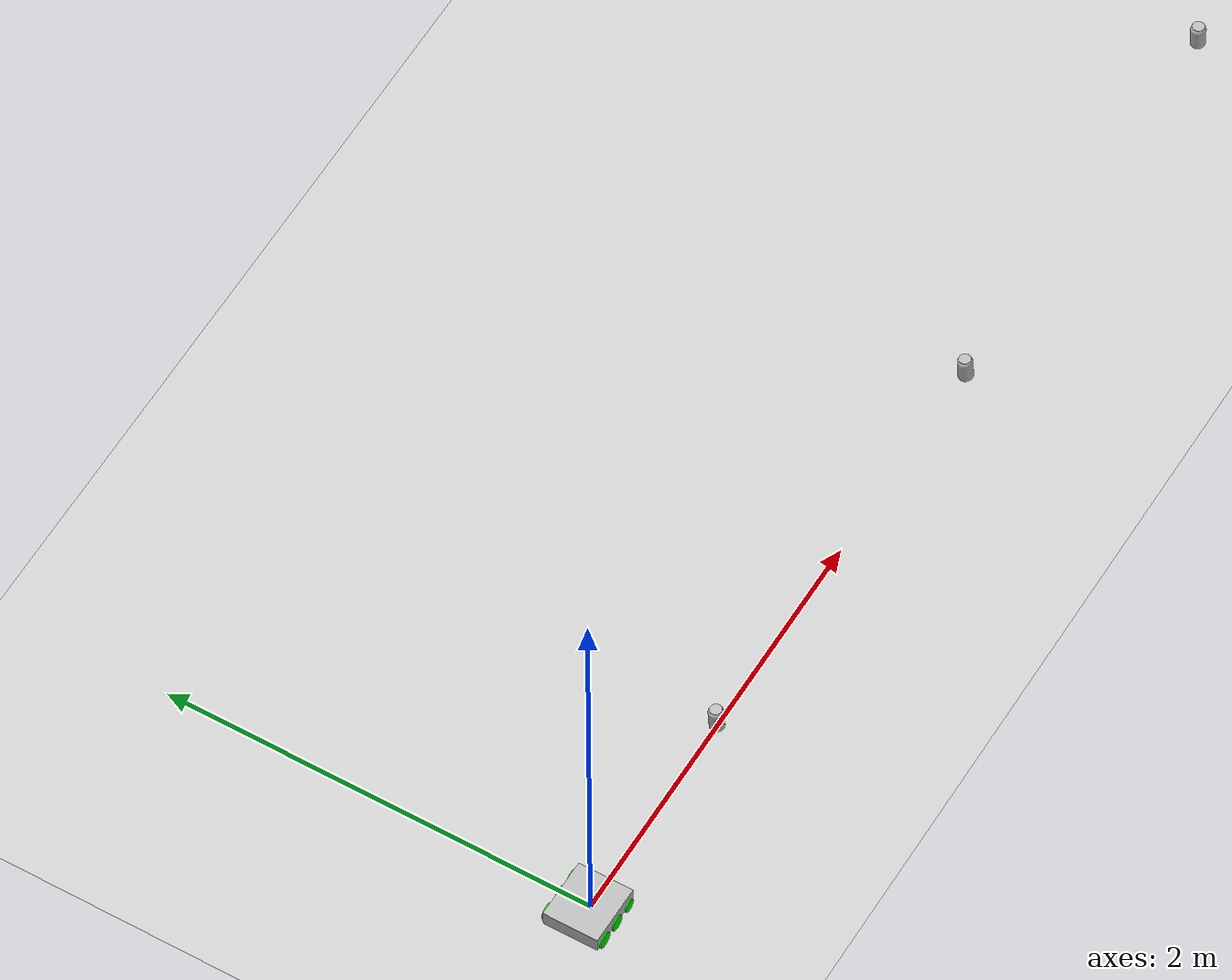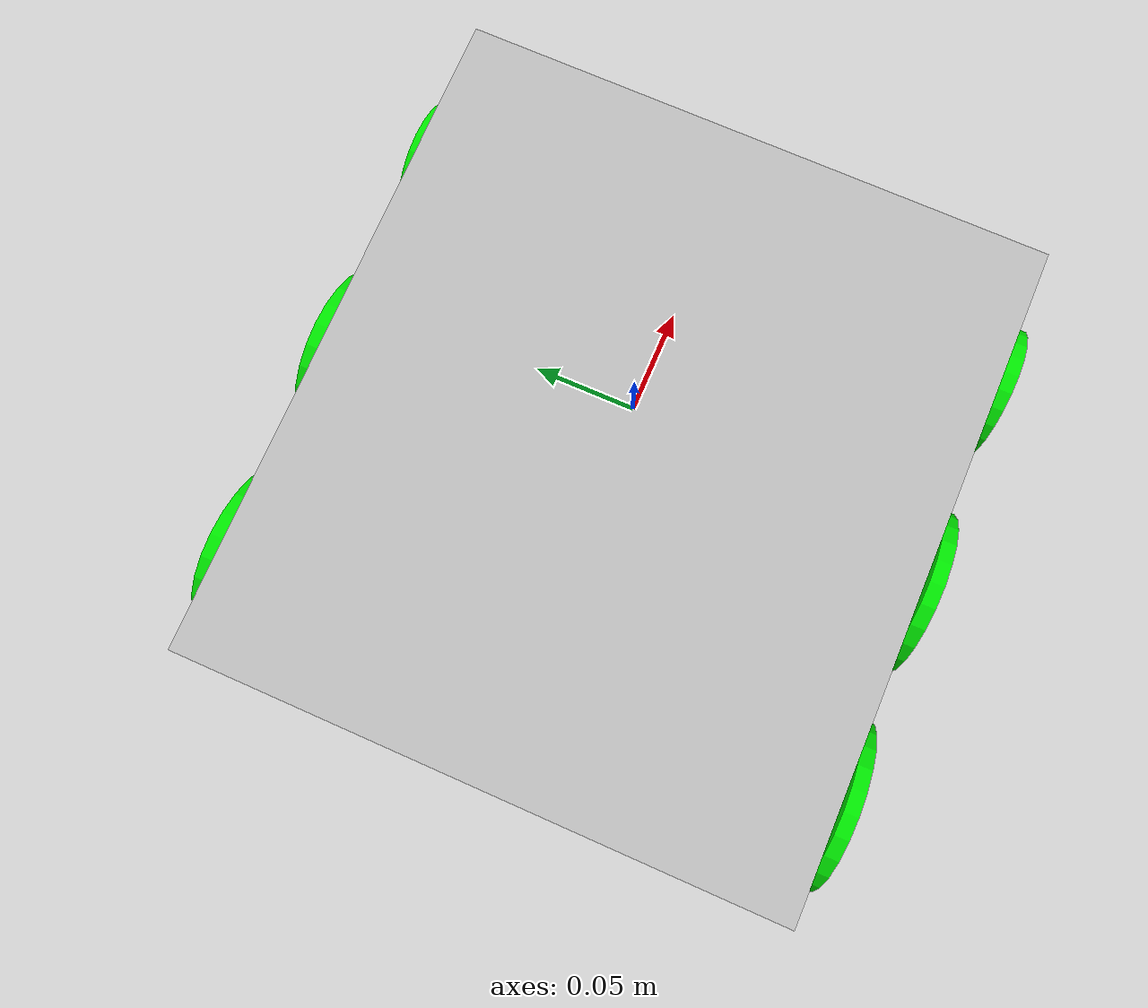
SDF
<sdf version="1.7">
 <world name="default">
  <light name="sun" type="directional">
   <pose>0 0 10 0 -0 0</pose>
   <diffuse>0.8 0.8 0.8 1</diffuse>
   <specular>0.2 0.2 0.2 1</specular>
   <attenuation>
    <range>1000</range>
    <constant>0.9</constant>
    <linear>0.01</linear>
    <quadratic>0.001</quadratic>
   </attenuation>
   <direction>-0.5 0.1 -0.9</direction>
   <spot><inner_angle>0</inner_angle><outer_angle>0</outer_angle><falloff>0</falloff></spot>
  </light>
  <model name="ground_plane">
   <static>1</static>
   <link name="link">
    <collision name="collision">
     <geometry><plane><normal>0 0 1</normal><size>100 100</size></plane></geometry>
     <surface>
      <contact><collide_bitmask>65535</collide_bitmask></contact>
      <friction><ode><mu>100</mu><mu2>50</mu2></ode></friction>
     </surface>
    </collision>
    <visual name="visual">
     <cast_shadows>0</cast_shadows>
     <geometry><plane><normal>0 0 1</normal><size>100 100</size></plane></geometry>
     <material>
      <script><uri>file://media/materials/scripts/gazebo.material</uri><name>Gazebo/Grey</name></script>
     </material>
    </visual>
   </link>
  </model>
  <gravity>0 0 -9.8</gravity>
  <magnetic_field>6e-06 2.3e-05 -4.2e-05</magnetic_field>
  <atmosphere type="adiabatic"/>
  <physics type="ode">
   <max_step_size>0.001</max_step_size>
   <real_time_factor>1</real_time_factor>
   <real_time_update_rate>1000</real_time_update_rate>
  </physics>
  <scene><ambient>0.4 0.4 0.4 1</ambient><background>0.7 0.7 0.7 1</background><shadows>1</shadows></scene>
  <spherical_coordinates>
   <surface_model>EARTH_WGS84</surface_model>
   <latitude_deg>0</latitude_deg>
   <longitude_deg>0</longitude_deg>
   <elevation>0</elevation>
   <heading_deg>0</heading_deg>
  </spherical_coordinates>
  <model name="six_wheel_robot">
   <static>0</static>
   <plugin name="robot_control" filename="libsix_wheel_robot_drivetrain.so"/>
   <link name="chassis">
    <pose>0 0 0.05 0 -0 0</pose>
    <inertial>
     <mass>1.5</mass>
     <pose>-0.05 0 0 0 -0 0</pose>
     <inertia><ixx>20</ixx><ixy>0</ixy><ixz>0</ixz><iyy>20</iyy><iyz>0</iyz><izz>0.05</izz></inertia>
    </inertial>
    <collision name="collision"><geometry><box><size>0.2794 0.254 0.073</size></box></geometry></collision>
    <visual name="visual"><geometry><box><size>0.2794 0.254 0.073</size></box></geometry></visual>
   </link>
   <link name="left_back_wheel">
    <pose>-0.095 0.135 0.036 -0 1.5707 1.5707</pose>
    <inertial>
     <mass>0.028</mass>
     <inertia><ixx>0.01</ixx><ixy>0</ixy><ixz>0</ixz><iyy>0.01</iyy><iyz>0</iyz><izz>0.001</izz></inertia>
    </inertial>
    <collision name="collision">
     <geometry><cylinder><radius>0.0365125</radius><length>0.00635</length></cylinder></geometry>
    </collision>
    <visual name="visual">
     <geometry><cylinder><radius>0.0365125</radius><length>0.00635</length></cylinder></geometry>
     <material>
      <ambient>0 0.9 0 1</ambient>
      <diffuse>0 0.9 0 1</diffuse>
      <specular>0 0 0 0</specular>
      <emissive>0 0 0 1</emissive>
     </material>
    </visual>
   </link>
   <joint name="left_back_wheel_hinge" type="revolute">
    <pose>0 0 -0.03 0 -0 0</pose>
    <child>left_back_wheel</child>
    <parent>chassis</parent>
    <axis>
     <xyz expressed_in="__model__">0 1 0</xyz>
     <limit><lower>-1e+16</lower><upper>1e+16</upper></limit>
     <dynamics><spring_reference>0</spring_reference><spring_stiffness>0</spring_stiffness></dynamics>
    </axis>
   </joint>
   <link name="left_center_wheel">
    <pose>0 0.135 0.036 -0 1.5707 1.5707</pose>
    <inertial>
     <mass>0.028</mass>
     <inertia><ixx>0.01</ixx><ixy>0</ixy><ixz>0</ixz><iyy>0.01</iyy><iyz>0</iyz><izz>0.001</izz></inertia>
    </inertial>
    <collision name="collision">
     <geometry><cylinder><radius>0.0365125</radius><length>0.00635</length></cylinder></geometry>
    </collision>
    <visual name="visual">
     <geometry><cylinder><radius>0.0365125</radius><length>0.00635</length></cylinder></geometry>
     <material>
      <ambient>0 0.9 0 1</ambient>
      <diffuse>0 0.9 0 1</diffuse>
      <specular>0 0 0 0</specular>
      <emissive>0 0 0 1</emissive>
     </material>
    </visual>
   </link>
   <joint name="left_center_wheel_hinge" type="revolute">
    <pose>0 0 -0.03 0 -0 0</pose>
    <child>left_center_wheel</child>
    <parent>chassis</parent>
    <axis>
     <xyz expressed_in="__model__">0 1 0</xyz>
     <limit><lower>-1e+16</lower><upper>1e+16</upper></limit>
     <dynamics><spring_reference>0</spring_reference><spring_stiffness>0</spring_stiffness></dynamics>
    </axis>
   </joint>
   <link name="left_front_wheel">
    <pose>0.095 0.135 0.036 -0 1.5707 1.5707</pose>
    <inertial>
     <mass>0.028</mass>
     <inertia><ixx>0.01</ixx><ixy>0</ixy><ixz>0</ixz><iyy>0.01</iyy><iyz>0</iyz><izz>0.001</izz></inertia>
    </inertial>
    <collision name="collision">
     <geometry><cylinder><radius>0.03</radius><length>0.00635</length></cylinder></geometry>
    </collision>
    <visual name="visual">
     <geometry><cylinder><radius>0.03</radius><length>0.00635</length></cylinder></geometry>
     <material>
      <ambient>0 0.9 0 1</ambient>
      <diffuse>0 0.9 0 1</diffuse>
      <specular>0 0 0 0</specular>
      <emissive>0 0 0 1</emissive>
     </material>
    </visual>
   </link>
   <joint name="left_front_wheel_hinge" type="revolute">
    <pose>0 0 -0.03 0 -0 0</pose>
    <child>left_front_wheel</child>
    <parent>chassis</parent>
    <axis>
     <xyz expressed_in="__model__">0 1 0</xyz>
     <limit><lower>-1e+16</lower><upper>1e+16</upper></limit>
     <dynamics><spring_reference>0</spring_reference><spring_stiffness>0</spring_stiffness></dynamics>
    </axis>
   </joint>
   <link name="right_back_wheel">
    <pose>-0.095 -0.135 0.036 -0 1.5707 1.5707</pose>
    <inertial>
     <mass>0.028</mass>
     <inertia><ixx>0.01</ixx><ixy>0</ixy><ixz>0</ixz><iyy>0.01</iyy><iyz>0</iyz><izz>0.001</izz></inertia>
    </inertial>
    <collision name="collision">
     <geometry><cylinder><radius>0.0365125</radius><length>0.00635</length></cylinder></geometry>
    </collision>
    <visual name="visual">
     <geometry><cylinder><radius>0.0365125</radius><length>0.00635</length></cylinder></geometry>
     <material>
      <ambient>0 0.9 0 1</ambient>
      <diffuse>0 0.9 0 1</diffuse>
      <specular>0 0 0 0</specular>
      <emissive>0 0 0 1</emissive>
     </material>
    </visual>
   </link>
   <joint name="right_back_wheel_hinge" type="revolute">
    <pose>0 0 0.03 0 -0 0</pose>
    <child>right_back_wheel</child>
    <parent>chassis</parent>
    <axis>
     <xyz expressed_in="__model__">0 1 0</xyz>
     <limit><lower>-1e+16</lower><upper>1e+16</upper></limit>
     <dynamics><spring_reference>0</spring_reference><spring_stiffness>0</spring_stiffness></dynamics>
    </axis>
   </joint>
   <link name="right_center_wheel">
    <pose>0 -0.135 0.036 -0 1.5707 1.5707</pose>
    <inertial>
     <mass>0.028</mass>
     <inertia><ixx>0.01</ixx><ixy>0</ixy><ixz>0</ixz><iyy>0.01</iyy><iyz>0</iyz><izz>0.001</izz></inertia>
    </inertial>
    <collision name="collision">
     <geometry><cylinder><radius>0.0365125</radius><length>0.00635</length></cylinder></geometry>
    </collision>
    <visual name="visual">
     <geometry><cylinder><radius>0.0365125</radius><length>0.00635</length></cylinder></geometry>
     <material>
      <ambient>0 0.9 0 1</ambient>
      <diffuse>0 0.9 0 1</diffuse>
      <specular>0 0 0 0</specular>
      <emissive>0 0 0 1</emissive>
     </material>
    </visual>
   </link>
   <joint name="right_center_wheel_hinge" type="revolute">
    <pose>0 0 0.03 0 -0 0</pose>
    <child>right_center_wheel</child>
    <parent>chassis</parent>
    <axis>
     <xyz expressed_in="__model__">0 1 0</xyz>
     <limit><lower>-1e+16</lower><upper>1e+16</upper></limit>
     <dynamics><spring_reference>0</spring_reference><spring_stiffness>0</spring_stiffness></dynamics>
    </axis>
   </joint>
   <link name="right_front_wheel">
    <pose>0.095 -0.135 0.036 -0 1.5707 1.5707</pose>
    <inertial>
     <mass>0.028</mass>
     <inertia><ixx>0.01</ixx><ixy>0</ixy><ixz>0</ixz><iyy>0.01</iyy><iyz>0</iyz><izz>0.001</izz></inertia>
    </inertial>
    <collision name="collision">
     <geometry><cylinder><radius>0.03</radius><length>0.00635</length></cylinder></geometry>
    </collision>
    <visual name="visual">
     <geometry><cylinder><radius>0.03</radius><length>0.00635</length></cylinder></geometry>
     <material>
      <ambient>0 0.9 0 1</ambient>
      <diffuse>0 0.9 0 1</diffuse>
      <specular>0 0 0 0</specular>
      <emissive>0 0 0 1</emissive>
     </material>
    </visual>
   </link>
   <joint name="right_front_wheel_hinge" type="revolute">
    <pose>0 0 0.03 0 -0 0</pose>
    <child>right_front_wheel</child>
    <parent>chassis</parent>
    <axis>
     <xyz expressed_in="__model__">0 1 0</xyz>
     <limit><lower>-1e+16</lower><upper>1e+16</upper></limit>
     <dynamics><spring_reference>0</spring_reference><spring_stiffness>0</spring_stiffness></dynamics>
    </axis>
   </joint>
   <pose>-0.034008 -0.009028 0.000512 4.2e-05 8e-06 -0.003094</pose>
  </model>
  <model name="coke_can">
   <link name="link">
    <inertial>
     <pose>0 0 0.06 0 -0 0</pose>
     <mass>0.39</mass>
     <inertia>
      <ixx>0.00055575</ixx>
      <ixy>0</ixy>
      <ixz>0</ixz>
      <iyy>0.00055575</iyy>
      <iyz>0</iyz>
      <izz>0.0001755</izz>
     </inertia>
    </inertial>
    <collision name="collision">
     <pose>0.003937 0.004724 -0.18 0 -0 0</pose>
     <geometry><mesh><uri>model://coke_can/meshes/coke_can.dae</uri></mesh></geometry>
     <surface>
      <friction><ode><mu>1</mu><mu2>1</mu2></ode></friction>
      <contact><ode><kp>1e+07</kp><kd>1</kd><min_depth>0.001</min_depth><max_vel>0.1</max_vel></ode></contact>
     </surface>
    </collision>
    <visual name="visual">
     <pose>0.003937 0.004724 -0.18 0 -0 0</pose>
     <geometry><mesh><uri>model://coke_can/meshes/coke_can.dae</uri></mesh></geometry>
    </visual>
   </link>
   <pose>1.00134 -0.001286 -0.002853 -0.064243 -0.002943 -0.000579</pose>
  </model>
  <model name="coke_can_clone">
   <link name="link">
    <inertial>
     <pose>0 0 0.06 0 -0 0</pose>
     <mass>0.39</mass>
     <inertia>
      <ixx>0.00055575</ixx>
      <ixy>0</ixy>
      <ixz>0</ixz>
      <iyy>0.00055575</iyy>
      <iyz>0</iyz>
      <izz>0.0001755</izz>
     </inertia>
    </inertial>
    <collision name="collision">
     <pose>0.003937 0.004724 -0.18 0 -0 0</pose>
     <geometry><mesh><uri>model://coke_can/meshes/coke_can.dae</uri></mesh></geometry>
     <surface>
      <friction><ode><mu>1</mu><mu2>1</mu2></ode></friction>
      <contact><ode><kp>1e+07</kp><kd>1</kd><min_depth>0.001</min_depth><max_vel>0.1</max_vel></ode></contact>
     </surface>
    </collision>
    <visual name="visual">
     <pose>0.003937 0.004724 -0.18 0 -0 0</pose>
     <geometry><mesh><uri>model://coke_can/meshes/coke_can.dae</uri></mesh></geometry>
    </visual>
   </link>
   <pose>5.01232 -0.003615 -0.002596 -0.018859 0.00315 0.000844</pose>
  </model>
  <model name="coke_can_clone_0">
   <link name="link">
    <inertial>
     <pose>0 0 0.06 0 -0 0</pose>
     <mass>0.39</mass>
     <inertia>
      <ixx>0.00055575</ixx>
      <ixy>0</ixy>
      <ixz>0</ixz>
      <iyy>0.00055575</iyy>
      <iyz>0</iyz>
      <izz>0.0001755</izz>
     </inertia>
    </inertial>
    <collision name="collision">
     <pose>0.003937 0.004724 -0.18 0 -0 0</pose>
     <geometry><mesh><uri>model://coke_can/meshes/coke_can.dae</uri></mesh></geometry>
     <surface>
      <friction><ode><mu>1</mu><mu2>1</mu2></ode></friction>
      <contact><ode><kp>1e+07</kp><kd>1</kd><min_depth>0.001</min_depth><max_vel>0.1</max_vel></ode></contact>
     </surface>
    </collision>
    <visual name="visual">
     <pose>0.003937 0.004724 -0.18 0 -0 0</pose>
     <geometry><mesh><uri>model://coke_can/meshes/coke_can.dae</uri></mesh></geometry>
    </visual>
   </link>
   <pose>3.01975 -0.010588 -0.00281 -0.064299 -0.000263 -0.000583</pose>
  </model>
 </world>
</sdf>
